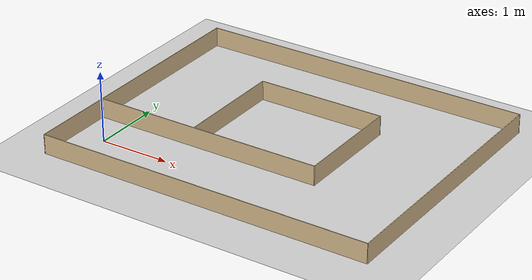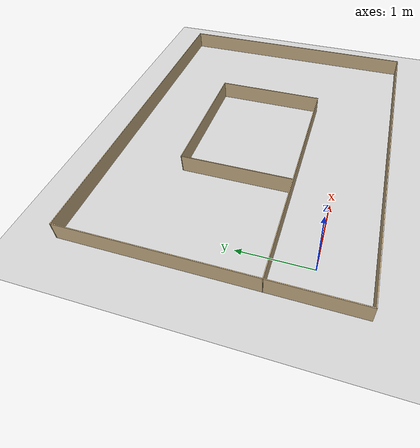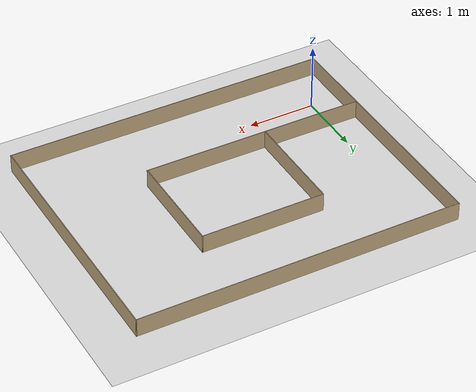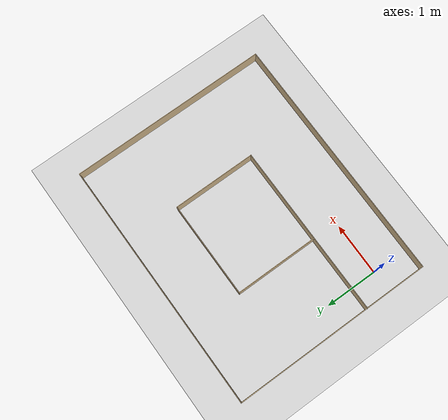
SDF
<sdf version="1.4">
  <world name="default">

    <scene>
      <ambient>0.4 0.4 0.4 1</ambient>
      <background>0.7 0.7 0.7 1</background>
      <shadows>true</shadows>
    </scene>

    <!-- A global light source -->
    <include>
      <uri>model://sun</uri>
    </include>

    <!-- A ground plane -->
    <include>
      <uri>model://ground_plane</uri>
    </include>

    <!-- My Maze -->
    <include>
      <uri>model://maze_simple_0</uri>
	<pose>2.00 1.25 0 0 0 0</pose>
    </include>

    <physics type="ode">
      <real_time_update_rate>1000.0</real_time_update_rate>
      <max_step_size>0.001</max_step_size>
      <real_time_factor>1</real_time_factor>
      <ode>
        <solver>
          <type>quick</type>
          <iters>150</iters>
          <precon_iters>0</precon_iters>
          <sor>1.400000</sor>
          <use_dynamic_moi_rescaling>1</use_dynamic_moi_rescaling>
        </solver>
        <constraints>
          <cfm>0.00001</cfm>
          <erp>0.2</erp>
          <contact_max_correcting_vel>2000.000000</contact_max_correcting_vel>
          <contact_surface_layer>0.01000</contact_surface_layer>
        </constraints>
      </ode>
    </physics>
  </world>

</sdf>

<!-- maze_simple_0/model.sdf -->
<sdf version='1.6'>
  <model name='maze_simple_0'>
    <pose frame=''>3.15667 -0.263 0 0 -0 0</pose>
    <link name='Wall_0'>
      <collision name='Wall_0_Collision'>
        <geometry>
          <box>
            <size>4.861 0.01 0.28</size>
          </box>
        </geometry>
        <pose frame=''>0 0 0.14 0 -0 0</pose>
      </collision>
      <visual name='Wall_0_Visual'>
        <pose frame=''>0 0 0.14 0 -0 0</pose>
        <geometry>
          <box>
            <size>4.861 0.01 0.28</size>
          </box>
        </geometry>
        <material>
          <script>
            <uri>file://media/materials/scripts/gazebo.material</uri>
            <name>Gazebo/Grey</name>
          </script>
          <ambient>0.921569 0.807843 0.615686 1</ambient>
        </material>
      </visual>
      <pose frame=''>0.000832 -1.925 0 0 -0 0</pose>
    </link>
    <link name='Wall_1'>
      <collision name='Wall_1_Collision'>
        <geometry>
          <box>
            <size>3.86 0.01 0.28</size>
          </box>
        </geometry>
        <pose frame=''>0 0 0.14 0 -0 0</pose>
      </collision>
      <visual name='Wall_1_Visual'>
        <pose frame=''>0 0 0.14 0 -0 0</pose>
        <geometry>
          <box>
            <size>3.86 0.01 0.28</size>
          </box>
        </geometry>
        <material>
          <script>
            <uri>file://media/materials/scripts/gazebo.material</uri>
            <name>Gazebo/Grey</name>
          </script>
          <ambient>0.921569 0.807843 0.615686 1</ambient>
        </material>
      </visual>
      <pose frame=''>2.42633 0 0 0 -0 1.5708</pose>
    </link>
    <link name='Wall_2'>
      <collision name='Wall_2_Collision'>
        <geometry>
          <box>
            <size>4.8605 0.01 0.28</size>
          </box>
        </geometry>
        <pose frame=''>0 0 0.14 0 -0 0</pose>
      </collision>
      <visual name='Wall_2_Visual'>
        <pose frame=''>0 0 0.14 0 -0 0</pose>
        <geometry>
          <box>
            <size>4.8605 0.01 0.28</size>
          </box>
        </geometry>
        <material>
          <script>
            <uri>file://media/materials/scripts/gazebo.material</uri>
            <name>Gazebo/Grey</name>
          </script>
          <ambient>0.921569 0.807843 0.615686 1</ambient>
        </material>
      </visual>
      <pose frame=''>0.001332 1.925 0 0 -0 3.14159</pose>
    </link>
    <link name='Wall_3'>
      <collision name='Wall_3_Collision'>
        <geometry>
          <box>
            <size>3.86 0.01 0.28</size>
          </box>
        </geometry>
        <pose frame=''>0 0 0.14 0 -0 0</pose>
      </collision>
      <visual name='Wall_3_Visual'>
        <pose frame=''>0 0 0.14 0 -0 0</pose>
        <geometry>
          <box>
            <size>3.86 0.01 0.28</size>
          </box>
        </geometry>
        <material>
          <script>
            <uri>file://media/materials/scripts/gazebo.material</uri>
            <name>Gazebo/Grey</name>
          </script>
          <ambient>0.921569 0.807843 0.615686 1</ambient>
        </material>
      </visual>
      <pose frame=''>-2.42417 0 0 0 0 -1.57106</pose>
    </link>
    <link name='Wall_5'>
      <collision name='Wall_5_Collision'>
        <geometry>
          <box>
            <size>3.35983 0.01 0.28</size>
          </box>
        </geometry>
        <pose frame=''>0 0 0.14 0 -0 0</pose>
      </collision>
      <visual name='Wall_5_Visual'>
        <pose frame=''>0 0 0.14 0 -0 0</pose>
        <geometry>
          <box>
            <size>3.35983 0.01 0.28</size>
          </box>
        </geometry>
        <material>
          <script>
            <uri>file://media/materials/scripts/gazebo.material</uri>
            <name>Gazebo/Grey</name>
          </script>
          <ambient>0.921569 0.807843 0.615686 1</ambient>
        </material>
      </visual>
      <pose frame=''>-0.751668 -0.72 0 0 -0 0</pose>
    </link>
    <link name='Wall_6'>
      <collision name='Wall_6_Collision'>
        <geometry>
          <box>
            <size>1.61013 0.01 0.28</size>
          </box>
        </geometry>
        <pose frame=''>0 0 0.14 0 -0 0</pose>
      </collision>
      <visual name='Wall_6_Visual'>
        <pose frame=''>0 0 0.14 0 -0 0</pose>
        <geometry>
          <box>
            <size>1.61013 0.01 0.28</size>
          </box>
        </geometry>
        <material>
          <script>
            <uri>file://media/materials/scripts/gazebo.material</uri>
            <name>Gazebo/Grey</name>
          </script>
          <ambient>0.921569 0.807843 0.615686 1</ambient>
        </material>
      </visual>
      <pose frame=''>0.923332 0.08 0 0 -0 1.5708</pose>
    </link>
    <link name='Wall_7'>
      <collision name='Wall_7_Collision'>
        <geometry>
          <box>
            <size>1.86017 0.01 0.28</size>
          </box>
        </geometry>
        <pose frame=''>0 0 0.14 0 -0 0</pose>
      </collision>
      <visual name='Wall_7_Visual'>
        <pose frame=''>0 0 0.14 0 -0 0</pose>
        <geometry>
          <box>
            <size>1.86017 0.01 0.28</size>
          </box>
        </geometry>
        <material>
          <script>
            <uri>file://media/materials/scripts/gazebo.material</uri>
            <name>Gazebo/Grey</name>
          </script>
          <ambient>0.921569 0.807843 0.615686 1</ambient>
        </material>
      </visual>
      <pose frame=''>-0.001668 0.88 0 0 -0 3.14159</pose>
    </link>
    <link name='Wall_8'>
      <collision name='Wall_8_Collision'>
        <geometry>
          <box>
            <size>1.60987 0.01 0.28</size>
          </box>
        </geometry>
        <pose frame=''>0 0 0.14 0 -0 0</pose>
      </collision>
      <visual name='Wall_8_Visual'>
        <pose frame=''>0 0 0.14 0 -0 0</pose>
        <geometry>
          <box>
            <size>1.60987 0.01 0.28</size>
          </box>
        </geometry>
        <material>
          <script>
            <uri>file://media/materials/scripts/gazebo.material</uri>
            <name>Gazebo/Grey</name>
          </script>
          <ambient>0.921569 0.807843 0.615686 1</ambient>
        </material>
      </visual>
      <pose frame=''>-0.926668 0.08 0 0 0 -1.5708</pose>
    </link>
    <static>1</static>
  </model>
</sdf>
